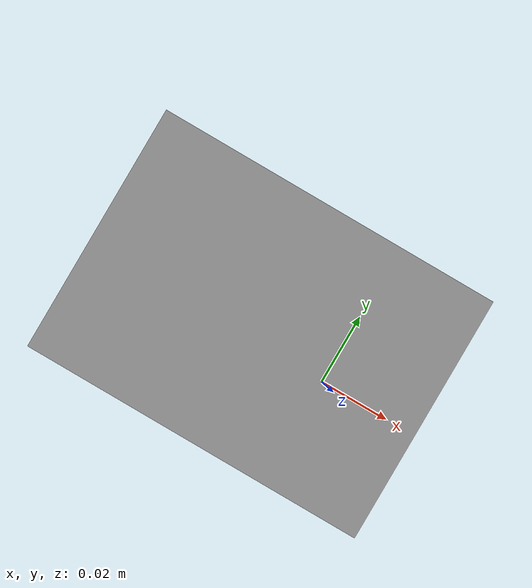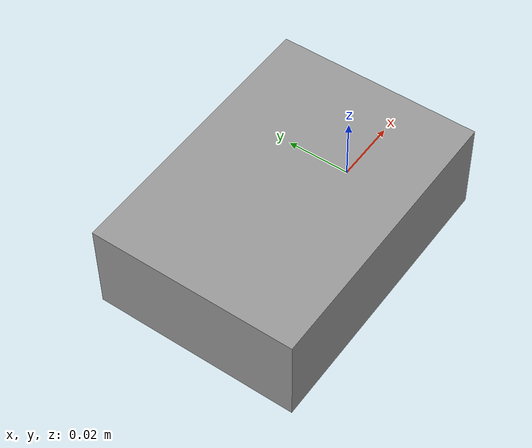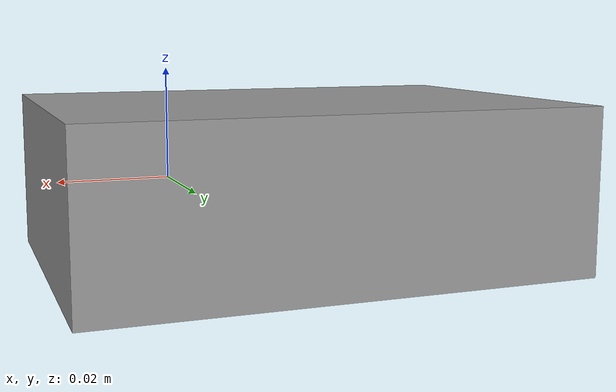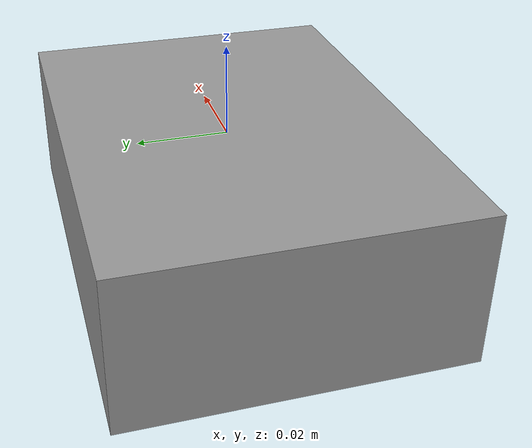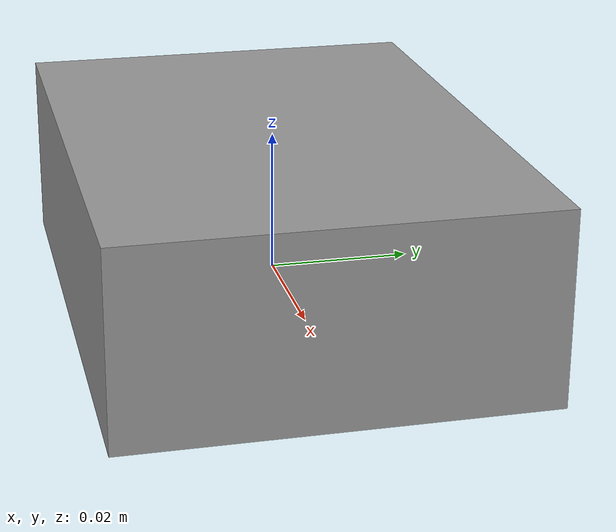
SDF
<?xml version='1.0'?>
<sdf version='1.6'>
    <model name='PiWithSensors'>
      <link name='link_0'>
        <inertial>
          <mass>0.2</mass>
          <inertia>
            <ixx>0.166667</ixx>
            <ixy>0</ixy>
            <ixz>0</ixz>
            <iyy>0.166667</iyy>
            <iyz>0</iyz>
            <izz>0.166667</izz>
          </inertia>
        </inertial>
        <pose frame=''>0 0 0 0 -0 0</pose>
        <visual name='visual'>
          <pose frame=''>0 0 0 0 -0 0</pose>
          <geometry>
            <box>
              <size>0.09 0.065 0.03</size>
            </box>
          </geometry>
          <material>
            <lighting>1</lighting>
            <script>
              <uri>file://media/materials/scripts/gazebo.material</uri>
              <name>Gazebo/Grey</name>
            </script>
          </material>
          <transparency>0</transparency>
          <cast_shadows>1</cast_shadows>
        </visual>
        <collision name='collision'>
          <laser_retro>0</laser_retro>
          <max_contacts>10</max_contacts>
          <pose frame=''>0 0 0 0 -0 0</pose>
          <geometry>
            <box>
              <size>0.09 0.065 0.03</size>
            </box>
          </geometry>
          <surface>
            <friction>
              <ode>
                <mu>1</mu>
                <mu2>1</mu2>
                <fdir1>0 0 0</fdir1>
                <slip1>0</slip1>
                <slip2>0</slip2>
              </ode>
              <torsional>
                <coefficient>1</coefficient>
                <patch_radius>0</patch_radius>
                <surface_radius>0</surface_radius>
                <use_patch_radius>1</use_patch_radius>
                <ode>
                  <slip>0</slip>
                </ode>
              </torsional>
            </friction>
            <bounce>
              <restitution_coefficient>0</restitution_coefficient>
              <threshold>1e+06</threshold>
            </bounce>
            <contact>
              <collide_without_contact>0</collide_without_contact>
              <collide_without_contact_bitmask>1</collide_without_contact_bitmask>
              <collide_bitmask>1</collide_bitmask>
              <ode>
                <soft_cfm>0</soft_cfm>
                <soft_erp>0.2</soft_erp>
                <kp>1e+13</kp>
                <kd>1</kd>
                <max_vel>0.01</max_vel>
                <min_depth>0</min_depth>
              </ode>
              <bullet>
                <split_impulse>1</split_impulse>
                <split_impulse_penetration_threshold>-0.01</split_impulse_penetration_threshold>
                <soft_cfm>0</soft_cfm>
                <soft_erp>0.2</soft_erp>
                <kp>1e+13</kp>
                <kd>1</kd>
              </bullet>
            </contact>
          </surface>
        </collision>
        <self_collide>0</self_collide>
        <enable_wind>0</enable_wind>
        <kinematic>0</kinematic>
      </link>
      <static>0</static>
      <allow_auto_disable>1</allow_auto_disable>
      <pose frame=''>-0.021944 0.004968 -0.000986 0 -0 0</pose>
    <model name='PiCameraModule'>
      <link name='link'>
        <sensor name='Camera' type='camera'>
          <pose frame=''>0 0 0 0 -0 0</pose>
          <visualize>1</visualize>
          <update_rate>10</update_rate>
          <topic>Camera</topic>
          <camera name='__default__'>
            <horizontal_fov>0.9337511</horizontal_fov>
            <image>
              <width>640</width>
              <height>480</height>
            </image>
            <clip>
              <near>0.1</near>
              <far>100</far>
            </clip>
          </camera>
        </sensor>
        <inertial>
          <mass>0.000121069</mass>
          <inertia>
            <ixx>3.83685e-08</ixx>
            <ixy>0</ixy>
            <ixz>0</ixz>
            <iyy>5.94533e-08</iyy>
            <iyz>0</iyz>
            <izz>6.4273e-08</izz>
          </inertia>
          <pose frame=''>0 0 0 0 -0 0</pose>
        </inertial>
        <pose frame=''>0 0 0 0 -0 0</pose>
        <self_collide>0</self_collide>
        <enable_wind>0</enable_wind>
        <kinematic>0</kinematic>
        <visual name='visual'>
          <pose frame=''>0 0 0 0 -0 0</pose>
          <geometry>
            <box>
              <size>0.00304 0.026264 0.025775</size>
            </box>
          </geometry>
          <material>
            <lighting>1</lighting>
            <script>
              <uri>file://media/materials/scripts/gazebo.material</uri>
              <name>Gazebo/Green</name>
            </script>
            <emissive>0 0 0 1</emissive>
          </material>
          <transparency>0</transparency>
          <cast_shadows>1</cast_shadows>
        </visual>
        <collision name='collision'>
          <laser_retro>0</laser_retro>
          <max_contacts>10</max_contacts>
          <pose frame=''>0 0 0 0 -0 0</pose>
          <geometry>
            <box>
              <size>0.00304 0.026264 0.025775</size>
            </box>
          </geometry>
          <surface>
            <friction>
              <ode>
                <mu>1</mu>
                <mu2>1</mu2>
                <fdir1>0 0 0</fdir1>
                <slip1>0</slip1>
                <slip2>0</slip2>
              </ode>
              <torsional>
                <coefficient>1</coefficient>
                <patch_radius>0</patch_radius>
                <surface_radius>0</surface_radius>
                <use_patch_radius>1</use_patch_radius>
                <ode>
                  <slip>0</slip>
                </ode>
              </torsional>
            </friction>
            <bounce>
              <restitution_coefficient>0</restitution_coefficient>
              <threshold>1e+06</threshold>
            </bounce>
            <contact>
              <collide_without_contact>0</collide_without_contact>
              <collide_without_contact_bitmask>1</collide_without_contact_bitmask>
              <collide_bitmask>1</collide_bitmask>
              <ode>
                <soft_cfm>0</soft_cfm>
                <soft_erp>0.2</soft_erp>
                <kp>1e+13</kp>
                <kd>1</kd>
                <max_vel>0.01</max_vel>
                <min_depth>0</min_depth>
              </ode>
              <bullet>
                <split_impulse>1</split_impulse>
                <split_impulse_penetration_threshold>-0.01</split_impulse_penetration_threshold>
                <soft_cfm>0</soft_cfm>
                <soft_erp>0.2</soft_erp>
                <kp>1e+13</kp>
                <kd>1</kd>
              </bullet>
            </contact>
          </surface>
        </collision>
      </link>
      <static>0</static>
      <allow_auto_disable>1</allow_auto_disable>
      <pose frame=''>0.021944 0.014949 0.000986 0 -0 0</pose>
    </model>
    <model name='VL53L1X'>
      <link name='link'>
        <sensor name='VL53L1X_rangefinder' type='ray'>
          <pose frame=''>0 0 0 1.5707 -0 0</pose>
          <visualize>1</visualize>
          <update_rate>10</update_rate>
          <topic>Distance</topic>
          <ray>
            <noise>
              <type>gaussian</type>
              <mean>0</mean>
              <stddev>0.01</stddev>
            </noise>
            <scan>
              <horizontal>
                <samples>16</samples>
                <resolution>1</resolution>
                <min_angle>-0.235619</min_angle>
                <max_angle>0.235619</max_angle>
              </horizontal>
              <vertical>
                <samples>16</samples>
                <resolution>1</resolution>
                <min_angle>-0.235619</min_angle>
                <max_angle>0.235619</max_angle>
              </vertical>
            </scan>
            <range>
              <min>0.05</min>
              <max>4</max>
              <resolution>0.001</resolution>
            </range>
          </ray>
        </sensor>
        <inertial>
          <mass>0.000121069</mass>
          <inertia>
            <ixx>3.83685e-08</ixx>
            <ixy>0</ixy>
            <ixz>0</ixz>
            <iyy>5.94533e-08</iyy>
            <iyz>0</iyz>
            <izz>6.4273e-08</izz>
          </inertia>
          <pose frame=''>0 0 0 0 -0 0</pose>
        </inertial>
        <pose frame=''>0.001396 -0.002424 0.248714 0 -0 0</pose>
        <self_collide>0</self_collide>
        <enable_wind>0</enable_wind>
        <kinematic>0</kinematic>
        <visual name='visual'>
          <pose frame=''>0 0 0 0 -0 0</pose>
          <geometry>
            <box>
              <size>0.00304 0.026264 0.020775</size>
            </box>
          </geometry>
          <material>
            <lighting>1</lighting>
            <script>
              <uri>file://media/materials/scripts/gazebo.material</uri>
              <name>Gazebo/DarkGrey</name>
            </script>
            <emissive>0 0 0 1</emissive>
          </material>
          <transparency>0</transparency>
          <cast_shadows>1</cast_shadows>
        </visual>
        <collision name='collision'>
          <laser_retro>0</laser_retro>
          <max_contacts>10</max_contacts>
          <pose frame=''>0 0 0 0 -0 0</pose>
          <geometry>
            <box>
              <size>0.00304 0.026264 0.020775</size>
            </box>
          </geometry>
          <surface>
            <friction>
              <ode>
                <mu>1</mu>
                <mu2>1</mu2>
                <fdir1>0 0 0</fdir1>
                <slip1>0</slip1>
                <slip2>0</slip2>
              </ode>
              <torsional>
                <coefficient>1</coefficient>
                <patch_radius>0</patch_radius>
                <surface_radius>0</surface_radius>
                <use_patch_radius>1</use_patch_radius>
                <ode>
                  <slip>0</slip>
                </ode>
              </torsional>
            </friction>
            <bounce>
              <restitution_coefficient>0</restitution_coefficient>
              <threshold>1e+06</threshold>
            </bounce>
            <contact>
              <collide_without_contact>0</collide_without_contact>
              <collide_without_contact_bitmask>1</collide_without_contact_bitmask>
              <collide_bitmask>1</collide_bitmask>
              <ode>
                <soft_cfm>0</soft_cfm>
                <soft_erp>0.2</soft_erp>
                <kp>1e+13</kp>
                <kd>1</kd>
                <max_vel>0.01</max_vel>
                <min_depth>0</min_depth>
              </ode>
              <bullet>
                <split_impulse>1</split_impulse>
                <split_impulse_penetration_threshold>-0.01</split_impulse_penetration_threshold>
                <soft_cfm>0</soft_cfm>
                <soft_erp>0.2</soft_erp>
                <kp>1e+13</kp>
                <kd>1</kd>
              </bullet>
            </contact>
          </surface>
        </collision>
      </link>
      <static>0</static>
      <allow_auto_disable>1</allow_auto_disable>
      <pose frame=''>0.022173 -0.010576 -0.246876 0 -0 0</pose>
    </model>
    <joint name='link_0_JOINT_1' type='fixed'>
      <parent>PiWithSensors::link_0</parent>
      <child>VL53L1X::link</child>
      <pose frame=''>0 0 0 0 -0 0</pose>
      <physics>
        <ode>
          <limit>
            <cfm>0</cfm>
            <erp>0.2</erp>
          </limit>
          <suspension>
            <cfm>0</cfm>
            <erp>0.2</erp>
          </suspension>
        </ode>
      </physics>
    </joint>
    <joint name='link_0_JOINT_0' type='fixed'>
      <parent>PiWithSensors::link_0</parent>
      <child>PiCameraModule::link</child>
      <pose frame=''>0 0 0 0 -0 0</pose>
      <physics>
        <ode>
          <limit>
            <cfm>0</cfm>
            <erp>0.2</erp>
          </limit>
          <suspension>
            <cfm>0</cfm>
            <erp>0.2</erp>
          </suspension>
        </ode>
      </physics>
    </joint>
    <static>0</static>
    <allow_auto_disable>1</allow_auto_disable>
</model>
</sdf>
